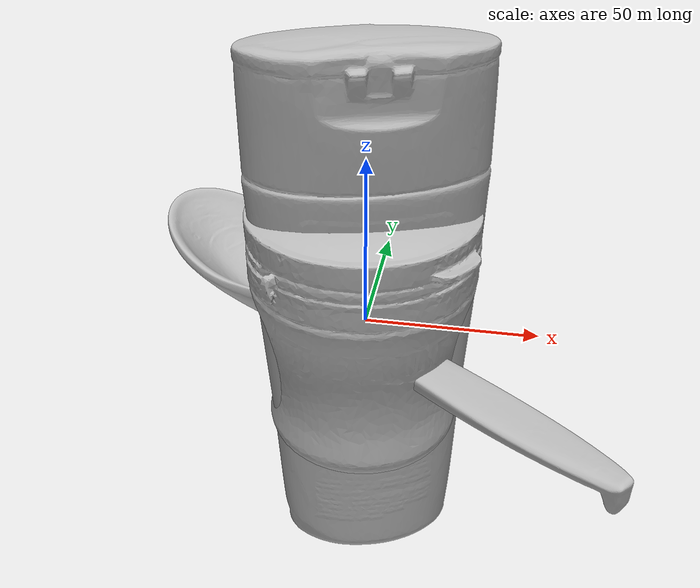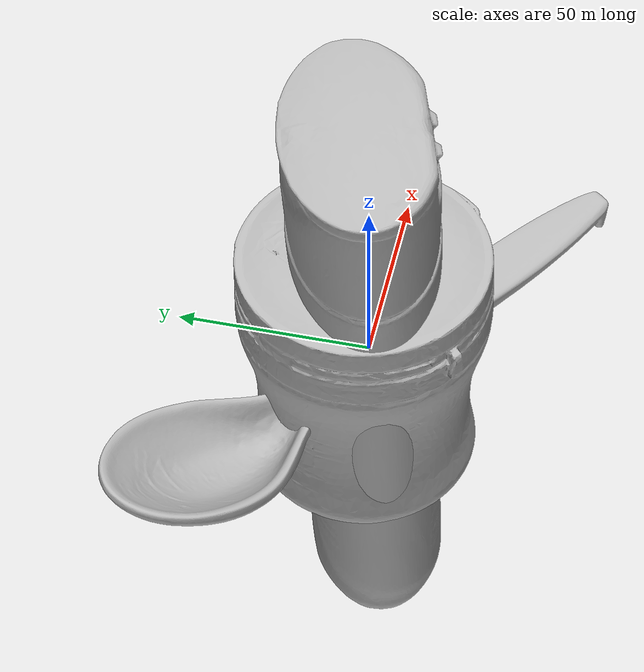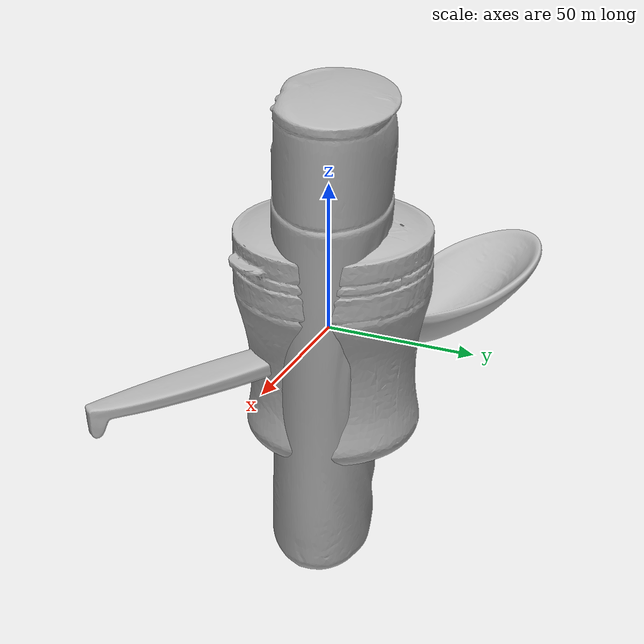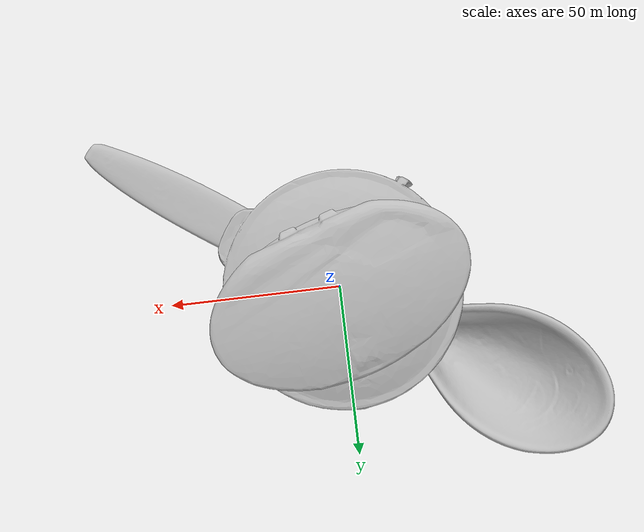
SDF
<sdf version="1.4">
 <world name="default">
  <light name="light1" type="point">
   <pose>0 0 1 0 0 0</pose>
   <diffuse>3 3 3 1</diffuse>
   <specular>3 3 3 1</specular>
  </light>
  <light name="light2" type="point">
   <pose>0 0.5 2 0 0 0</pose>
   <diffuse>1 1 1 1</diffuse>
   <specular>1 1 1 1</specular>
  </light>
  <light name="light3" type="point">
   <pose>0 0.5 2 0 0 0</pose>
   <diffuse>3 3 3 1</diffuse>
   <specular>3 3 3 1</specular>
  </light>
  <scene><ambient>0.7 0.7 0.7</ambient></scene>
  <model name="bottle1">
   <link name="link_bottle1">
    <collision name="default">
     <geometry>
      <mesh><uri>model://green_arrow/collision_meshes/collision.obj</uri><scale>1.0 1.0 1.0</scale></mesh>
     </geometry>
     <surface>
      <friction><ode><mu>0.5</mu><mu2>0.5</mu2></ode></friction>
      <contact><ode><max_vel>0</max_vel><min_depth>0.0001</min_depth><kp>1e8</kp></ode></contact>
     </surface>
    </collision>
    <visual name="default">
     <geometry>
      <mesh><uri>model://green_arrow/visual_meshes/visual.dae</uri><scale>1.0 1.0 1.0</scale></mesh>
     </geometry>
    </visual>
    <inertial>
     <mass>0.159866601228714</mass>
     <pose>0.0005358478520065546 -0.0008270691614598036 0.0022109695710241795 -0.0633227561078847 0.012984243694000861 0.6740794776591725</pose>
     <inertia>
      <ixx>0.00011596808</ixx>
      <iyy>0.00011579238</iyy>
      <izz>7.488036e-05</izz>
      <ixy>0</ixy>
      <ixz>0</ixz>
      <iyz>0</iyz>
     </inertia>
    </inertial>
   </link>
   <pose>-0.068590447306633 0.2231414020061493 0.03896167501807213 0.045282713241580494 0.024266948331974177 -2.85555968314436</pose>
  </model>
  <model name="bottle2">
   <link name="link_bottle2">
    <collision name="default">
     <geometry>
      <mesh><uri>model://conditioner/collision_meshes/collision.obj</uri><scale>1.0 1.0 1.0</scale></mesh>
     </geometry>
     <surface>
      <friction><ode><mu>0.5</mu><mu2>0.5</mu2></ode></friction>
      <contact><ode><max_vel>0</max_vel><min_depth>0.0001</min_depth><kp>1e8</kp></ode></contact>
     </surface>
    </collision>
    <visual name="default">
     <geometry>
      <mesh><uri>model://conditioner/visual_meshes/visual.dae</uri><scale>1.0 1.0 1.0</scale></mesh>
     </geometry>
    </visual>
    <inertial>
     <mass>0.1887805312871933</mass>
     <pose>-0.00055994390277192 -0.00017297487647738308 0.004359682556241751 -0.005038374268360293 0.015306043554332214 0.015072361860715313</pose>
     <inertia>
      <ixx>0.00041066532</ixx>
      <iyy>0.00043991112</iyy>
      <izz>6.3318876e-05</izz>
      <ixy>0</ixy>
      <ixz>0</ixz>
      <iyz>0</iyz>
     </inertia>
    </inertial>
   </link>
   <pose>-0.04815400764346123 -0.222242534160614 0.08122976124286652 0.03689333898832289 -0.015660657041748065 -2.8542502263002985</pose>
  </model>
  <model name="silverware1">
   <link name="link_silverware1">
    <collision name="default">
     <geometry>
      <mesh><uri>model://doraemon_spoon/collision_meshes/collision.obj</uri><scale>1.0 1.0 1.0</scale></mesh>
     </geometry>
     <surface>
      <friction><ode><mu>0.5</mu><mu2>0.5</mu2></ode></friction>
      <contact><ode><max_vel>0</max_vel><min_depth>0.0001</min_depth><kp>1e8</kp></ode></contact>
     </surface>
    </collision>
    <visual name="default">
     <geometry>
      <mesh><uri>model://doraemon_spoon/visual_meshes/visual.dae</uri><scale>1.0 1.0 1.0</scale></mesh>
     </geometry>
    </visual>
    <inertial>
     <mass>0.029215902090072632</mass>
     <pose>-0.022165078669786453 -0.0006374581134878099 -0.003332544816657901 -0.009147069561506448 0.07380416816022378 -0.014123831282405222</pose>
     <inertia>
      <ixx>2.2884674e-06</ixx>
      <iyy>6.499588e-05</iyy>
      <izz>6.610089e-05</izz>
      <ixy>0</ixy>
      <ixz>0</ixz>
      <iyz>0</iyz>
     </inertia>
    </inertial>
   </link>
   <pose>0.09735782444477081 0.2847811281681061 0.014971422962844372 0.01915007063982533 -0.004323303962034814 -0.5848703765959775</pose>
  </model>
  <model name="stationery1">
   <link name="link_stationery1">
    <collision name="default">
     <geometry>
      <mesh><uri>model://correction_fuid/collision_meshes/collision.obj</uri><scale>1.0 1.0 1.0</scale></mesh>
     </geometry>
     <surface>
      <friction><ode><mu>0.5</mu><mu2>0.5</mu2></ode></friction>
      <contact><ode><max_vel>0</max_vel><min_depth>0.0001</min_depth><kp>1e8</kp></ode></contact>
     </surface>
    </collision>
    <visual name="default">
     <geometry>
      <mesh><uri>model://correction_fuid/visual_meshes/visual.dae</uri><scale>1.0 1.0 1.0</scale></mesh>
     </geometry>
    </visual>
    <inertial>
     <mass>0.02664039097726345</mass>
     <pose>-0.00012557733862195164 -0.0009722907561808825 -0.001618212671019137 -0.010846611490809042 0.019488348158978066 -0.015992455472155966</pose>
     <inertia>
      <ixx>2.5801672e-05</ixx>
      <iyy>1.5615498e-06</iyy>
      <izz>2.6473212e-05</izz>
      <ixy>0</ixy>
      <ixz>0</ixz>
      <iyz>0</iyz>
     </inertia>
    </inertial>
   </link>
   <pose>0.13256189227104187 -0.05163540318608284 0.009632832370698452 -0.0017271187121994554 -0.056168674419942305 -0.3374790256327058</pose>
  </model>
  <model name="bowl1">
   <link name="link_bowl1">
    <collision name="default">
     <geometry>
      <mesh><uri>model://doraemon_bowl/collision_meshes/collision.obj</uri><scale>1.0 1.0 1.0</scale></mesh>
     </geometry>
     <surface>
      <friction><ode><mu>0.5</mu><mu2>0.5</mu2></ode></friction>
      <contact><ode><max_vel>0</max_vel><min_depth>0.0001</min_depth><kp>1e8</kp></ode></contact>
     </surface>
    </collision>
    <visual name="default">
     <geometry>
      <mesh><uri>model://doraemon_bowl/visual_meshes/visual.dae</uri><scale>1.0 1.0 1.0</scale></mesh>
     </geometry>
    </visual>
    <inertial>
     <mass>0.0632677748799324</mass>
     <pose>-0.014629557728767395 0.00048571318620815873 -0.0020864882972091436 -0.005093978566849342 -0.10568406006641042 -0.026426380562233804</pose>
     <inertia>
      <ixx>8.773087e-05</ixx>
      <iyy>0.00011545301</iyy>
      <izz>0.00016985848</izz>
      <ixy>0</ixy>
      <ixz>0</ixz>
      <iyz>0</iyz>
     </inertia>
    </inertial>
   </link>
   <pose>-0.01863751746714115 0.29517823457717896 0.02590547874569893 0.008595833809117645 0.006344339239024399 -0.8223272989551091</pose>
  </model>
  <model name="cup1">
   <link name="link_cup1">
    <collision name="default">
     <geometry>
      <mesh><uri>model://doraemon_cup/collision_meshes/collision.obj</uri><scale>1.0 1.0 1.0</scale></mesh>
     </geometry>
     <surface>
      <friction><ode><mu>0.5</mu><mu2>0.5</mu2></ode></friction>
      <contact><ode><max_vel>0</max_vel><min_depth>0.0001</min_depth><kp>1e8</kp></ode></contact>
     </surface>
    </collision>
    <visual name="default">
     <geometry>
      <mesh><uri>model://doraemon_cup/visual_meshes/visual.dae</uri><scale>1.0 1.0 1.0</scale></mesh>
     </geometry>
    </visual>
    <inertial>
     <mass>0.04278137534856796</mass>
     <pose>-0.0003292987239547074 -0.0016633577179163694 -0.0022522551007568836 0.19498548950287564 -0.013693938110122818 -0.3205458650037051</pose>
     <inertia>
      <ixx>5.8507427e-05</ixx>
      <iyy>5.6580026e-05</iyy>
      <izz>4.623892e-05</izz>
      <ixy>0</ixy>
      <ixz>0</ixz>
      <iyz>0</iyz>
     </inertia>
    </inertial>
   </link>
   <pose>0.1541815996170044 -0.20830635726451874 0.04623100906610489 -0.01246019359785798 -0.007979713915028046 1.160872843272132</pose>
  </model>
  <model name="plate1">
   <link name="link_plate1">
    <collision name="default">
     <geometry>
      <mesh><uri>model://hello_kitty_plate/collision_meshes/collision.obj</uri><scale>1.0 1.0 1.0</scale></mesh>
     </geometry>
     <surface>
      <friction><ode><mu>0.5</mu><mu2>0.5</mu2></ode></friction>
      <contact><ode><max_vel>0</max_vel><min_depth>0.0001</min_depth><kp>1e8</kp></ode></contact>
     </surface>
    </collision>
    <visual name="default">
     <geometry>
      <mesh><uri>model://hello_kitty_plate/visual_meshes/visual.dae</uri><scale>1.0 1.0 1.0</scale></mesh>
     </geometry>
    </visual>
    <inertial>
     <mass>0.03555070236325264</mass>
     <pose>0.0073143006302416325 0.0002893744967877865 -0.0027947186026722193 -0.00010431820965322355 -0.007054446463638022 -0.014449070801334592</pose>
     <inertia>
      <ixx>6.855243e-05</ixx>
      <iyy>0.00012937908</iyy>
      <izz>0.0001964492</izz>
      <ixy>0</ixy>
      <ixz>0</ixz>
      <iyz>0</iyz>
     </inertia>
    </inertial>
   </link>
   <pose>0.18459530174732208 0.20565049350261688 0.014324762858450413 0.11297473680508328 0.005551815561777191 1.3175039450535388</pose>
  </model>
  <model name="box4">
   <link name="link_box4">
    <collision name="default">
     <geometry>
      <mesh><uri>model://wooden_puzzle1/collision_meshes/collision.obj</uri><scale>1.0 1.0 1.0</scale></mesh>
     </geometry>
     <surface>
      <friction><ode><mu>0.5</mu><mu2>0.5</mu2></ode></friction>
      <contact><ode><max_vel>0</max_vel><min_depth>0.0001</min_depth><kp>1e8</kp></ode></contact>
     </surface>
    </collision>
    <visual name="default">
     <geometry>
      <mesh><uri>model://wooden_puzzle1/visual_meshes/visual.dae</uri><scale>1.0 1.0 1.0</scale></mesh>
     </geometry>
    </visual>
    <inertial>
     <mass>0.03278602659702301</mass>
     <pose>-0.00017350679263472557 7.972260937094688e-05 -9.191554272547364e-05 -0.07784358361794479 -0.263610796923839 -0.5528741327723476</pose>
     <inertia>
      <ixx>6.1858273e-06</ixx>
      <iyy>6.0667485e-06</iyy>
      <izz>6.139123e-06</izz>
      <ixy>0</ixy>
      <ixz>0</ixz>
      <iyz>0</iyz>
     </inertia>
    </inertial>
   </link>
   <pose>0.2795056402683258 -0.3090030550956726 0.016802020370960236 0.01051099814786164 -0.009455715171996521 1.825718168951185</pose>
  </model>
  <physics type="ode">
   <max_contacts>50</max_contacts>
   <ode>
    <solver><type>quick</type><iters>75</iters></solver>
    <constraints>
     <contact_max_correcting_vel>0</contact_max_correcting_vel>
     <contact_surface_layer>0</contact_surface_layer>
    </constraints>
   </ode>
  </physics>
 </world>
</sdf>
